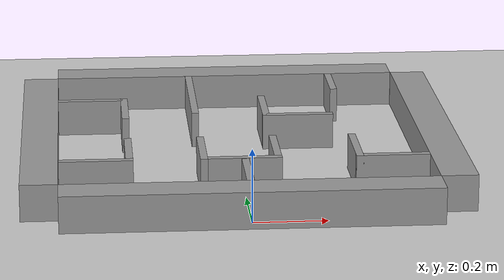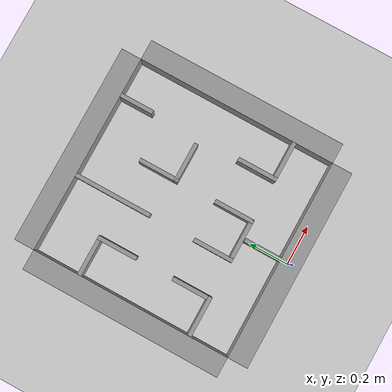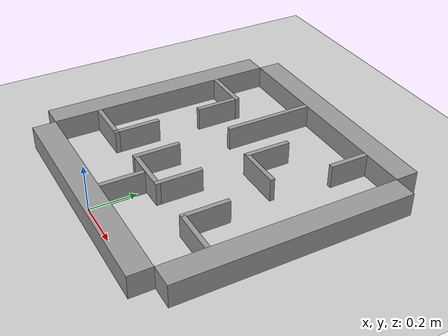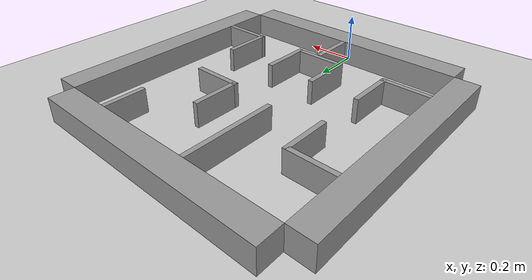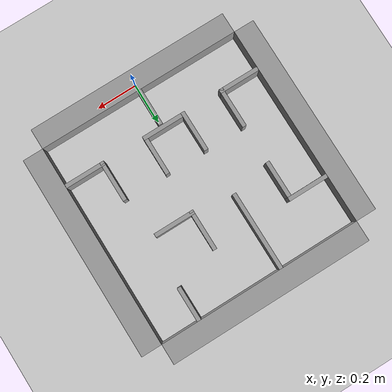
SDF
<sdf version="1.6">
 <world name="default">
  <physics type="ode">
   <ode><solver><type>quick</type><iters>50</iters><friction_model>cone_model</friction_model></solver></ode>
  </physics>
  <light name="sun" type="directional">
   <pose>0 0 10 0 -0 0</pose>
   <diffuse>0.8 0.8 0.8 1</diffuse>
   <specular>0.1 0.1 0.1 1</specular>
   <attenuation>
    <range>1000</range>
    <constant>0.9</constant>
    <linear>0.01</linear>
    <quadratic>0.001</quadratic>
   </attenuation>
   <direction>-0.5 0.5 -1</direction>
  </light>
  <model name="ground_plane">
   <static>1</static>
   <link name="link">
    <collision name="collision">
     <geometry><plane><normal>0 0 1</normal><size>100 100</size></plane></geometry>
     <surface><friction><ode><mu>100</mu><mu2>50</mu2></ode></friction></surface>
    </collision>
    <visual name="visual">
     <cast_shadows>0</cast_shadows>
     <geometry><plane><normal>0 0 1</normal><size>100 100</size></plane></geometry>
     <material>
      <script><uri>file://media/materials/scripts/gazebo.material</uri><name>Gazebo/Grey</name></script>
     </material>
    </visual>
   </link>
  </model>
  <gravity>0 0 -9.8</gravity>
  <magnetic_field>6e-06 2.3e-05 -4.2e-05</magnetic_field>
  <atmosphere type="adiabatic"/>
  <physics name="default_physics" default="0" type="ode">
   <max_step_size>0.001</max_step_size>
   <real_time_factor>1</real_time_factor>
   <real_time_update_rate>1000</real_time_update_rate>
  </physics>
  <scene><ambient>0.4 0.4 0.4 1</ambient><background>0.7 0.7 0.7 1</background><shadows>1</shadows></scene>
  <spherical_coordinates>
   <surface_model>EARTH_WGS84</surface_model>
   <latitude_deg>0</latitude_deg>
   <longitude_deg>0</longitude_deg>
   <elevation>0</elevation>
   <heading_deg>0</heading_deg>
  </spherical_coordinates>
  <model name="vector_world_2">
   <link name="link_0">
    <pose>0.014437 -0.508808 0 0 -0 0</pose>
    <inertial>
     <mass>1</mass>
     <inertia>
      <ixx>0.166667</ixx>
      <ixy>0</ixy>
      <ixz>0</ixz>
      <iyy>0.166667</iyy>
      <iyz>0</iyz>
      <izz>0.166667</izz>
     </inertia>
    </inertial>
    <visual name="visual">
     <geometry><box><size>1 0.1 0.1</size></box></geometry>
     <material>
      <lighting>1</lighting>
      <script><uri>file://media/materials/scripts/gazebo.material</uri><name>Gazebo/Grey</name></script>
      <ambient>0.3 0.3 0.3 1</ambient>
      <diffuse>0.7 0.7 0.7 1</diffuse>
      <specular>0.01 0.01 0.01 1</specular>
      <emissive>0 0 0 1</emissive>
      <shader type="vertex"><normal_map>__default__</normal_map></shader>
     </material>
    </visual>
    <collision name="collision">
     <geometry><box><size>1 0.1 0.1</size></box></geometry>
     <surface>
      <friction>
       <ode><mu>1</mu><mu2>1</mu2><fdir1>0 0 0</fdir1><slip1>0</slip1><slip2>0</slip2></ode>
       <torsional>
        <coefficient>1</coefficient>
        <patch_radius>0</patch_radius>
        <surface_radius>0</surface_radius>
        <use_patch_radius>1</use_patch_radius>
        <ode><slip>0</slip></ode>
       </torsional>
      </friction>
      <bounce><restitution_coefficient>0</restitution_coefficient><threshold>1e+06</threshold></bounce>
      <contact>
       <collide_without_contact>0</collide_without_contact>
       <collide_without_contact_bitmask>1</collide_without_contact_bitmask>
       <collide_bitmask>1</collide_bitmask>
       <ode>
        <soft_cfm>0</soft_cfm>
        <soft_erp>0.2</soft_erp>
        <kp>1e+13</kp>
        <kd>1</kd>
        <max_vel>0.01</max_vel>
        <min_depth>0</min_depth>
       </ode>
       <bullet>
        <split_impulse>1</split_impulse>
        <split_impulse_penetration_threshold>-0.01</split_impulse_penetration_threshold>
        <soft_cfm>0</soft_cfm>
        <soft_erp>0.2</soft_erp>
        <kp>1e+13</kp>
        <kd>1</kd>
       </bullet>
      </contact>
     </surface>
    </collision>
   </link>
   <link name="link_0_clone">
    <pose>0.564437 0.041192 0 0 -0 1.57</pose>
    <inertial>
     <mass>1</mass>
     <inertia>
      <ixx>0.166667</ixx>
      <ixy>0</ixy>
      <ixz>0</ixz>
      <iyy>0.166667</iyy>
      <iyz>0</iyz>
      <izz>0.166667</izz>
     </inertia>
    </inertial>
    <visual name="visual">
     <geometry><box><size>1 0.1 0.1</size></box></geometry>
     <material>
      <lighting>1</lighting>
      <script><uri>file://media/materials/scripts/gazebo.material</uri><name>Gazebo/Grey</name></script>
      <ambient>0.3 0.3 0.3 1</ambient>
      <diffuse>0.7 0.7 0.7 1</diffuse>
      <specular>0.01 0.01 0.01 1</specular>
      <emissive>0 0 0 1</emissive>
      <shader type="vertex"><normal_map>__default__</normal_map></shader>
     </material>
    </visual>
    <collision name="collision">
     <geometry><box><size>1 0.1 0.1</size></box></geometry>
     <surface>
      <friction>
       <ode><mu>1</mu><mu2>1</mu2><fdir1>0 0 0</fdir1><slip1>0</slip1><slip2>0</slip2></ode>
       <torsional>
        <coefficient>1</coefficient>
        <patch_radius>0</patch_radius>
        <surface_radius>0</surface_radius>
        <use_patch_radius>1</use_patch_radius>
        <ode><slip>0</slip></ode>
       </torsional>
      </friction>
      <bounce><restitution_coefficient>0</restitution_coefficient><threshold>1e+06</threshold></bounce>
      <contact>
       <collide_without_contact>0</collide_without_contact>
       <collide_without_contact_bitmask>1</collide_without_contact_bitmask>
       <collide_bitmask>1</collide_bitmask>
       <ode>
        <soft_cfm>0</soft_cfm>
        <soft_erp>0.2</soft_erp>
        <kp>1e+13</kp>
        <kd>1</kd>
        <max_vel>0.01</max_vel>
        <min_depth>0</min_depth>
       </ode>
       <bullet>
        <split_impulse>1</split_impulse>
        <split_impulse_penetration_threshold>-0.01</split_impulse_penetration_threshold>
        <soft_cfm>0</soft_cfm>
        <soft_erp>0.2</soft_erp>
        <kp>1e+13</kp>
        <kd>1</kd>
       </bullet>
      </contact>
     </surface>
    </collision>
   </link>
   <link name="link_0_clone_0">
    <pose>-0.535563 0.041192 0 0 -0 1.57</pose>
    <inertial>
     <mass>1</mass>
     <inertia>
      <ixx>0.166667</ixx>
      <ixy>0</ixy>
      <ixz>0</ixz>
      <iyy>0.166667</iyy>
      <iyz>0</iyz>
      <izz>0.166667</izz>
     </inertia>
    </inertial>
    <visual name="visual">
     <geometry><box><size>1 0.1 0.1</size></box></geometry>
     <material>
      <lighting>1</lighting>
      <script><uri>file://media/materials/scripts/gazebo.material</uri><name>Gazebo/Grey</name></script>
      <ambient>0.3 0.3 0.3 1</ambient>
      <diffuse>0.7 0.7 0.7 1</diffuse>
      <specular>0.01 0.01 0.01 1</specular>
      <emissive>0 0 0 1</emissive>
      <shader type="vertex"><normal_map>__default__</normal_map></shader>
     </material>
    </visual>
    <collision name="collision">
     <geometry><box><size>1 0.1 0.1</size></box></geometry>
     <surface>
      <friction>
       <ode><mu>1</mu><mu2>1</mu2><fdir1>0 0 0</fdir1><slip1>0</slip1><slip2>0</slip2></ode>
       <torsional>
        <coefficient>1</coefficient>
        <patch_radius>0</patch_radius>
        <surface_radius>0</surface_radius>
        <use_patch_radius>1</use_patch_radius>
        <ode><slip>0</slip></ode>
       </torsional>
      </friction>
      <bounce><restitution_coefficient>0</restitution_coefficient><threshold>1e+06</threshold></bounce>
      <contact>
       <collide_without_contact>0</collide_without_contact>
       <collide_without_contact_bitmask>1</collide_without_contact_bitmask>
       <collide_bitmask>1</collide_bitmask>
       <ode>
        <soft_cfm>0</soft_cfm>
        <soft_erp>0.2</soft_erp>
        <kp>1e+13</kp>
        <kd>1</kd>
        <max_vel>0.01</max_vel>
        <min_depth>0</min_depth>
       </ode>
       <bullet>
        <split_impulse>1</split_impulse>
        <split_impulse_penetration_threshold>-0.01</split_impulse_penetration_threshold>
        <soft_cfm>0</soft_cfm>
        <soft_erp>0.2</soft_erp>
        <kp>1e+13</kp>
        <kd>1</kd>
       </bullet>
      </contact>
     </surface>
    </collision>
   </link>
   <link name="link_0_clone_1">
    <pose>0.014437 0.591192 0 0 -0 0</pose>
    <inertial>
     <mass>1</mass>
     <inertia>
      <ixx>0.166667</ixx>
      <ixy>0</ixy>
      <ixz>0</ixz>
      <iyy>0.166667</iyy>
      <iyz>0</iyz>
      <izz>0.166667</izz>
     </inertia>
    </inertial>
    <visual name="visual">
     <geometry><box><size>1 0.1 0.1</size></box></geometry>
     <material>
      <lighting>1</lighting>
      <script><uri>file://media/materials/scripts/gazebo.material</uri><name>Gazebo/Grey</name></script>
      <ambient>0.3 0.3 0.3 1</ambient>
      <diffuse>0.7 0.7 0.7 1</diffuse>
      <specular>0.01 0.01 0.01 1</specular>
      <emissive>0 0 0 1</emissive>
      <shader type="vertex"><normal_map>__default__</normal_map></shader>
     </material>
    </visual>
    <collision name="collision">
     <geometry><box><size>1 0.1 0.1</size></box></geometry>
     <surface>
      <friction>
       <ode><mu>1</mu><mu2>1</mu2><fdir1>0 0 0</fdir1><slip1>0</slip1><slip2>0</slip2></ode>
       <torsional>
        <coefficient>1</coefficient>
        <patch_radius>0</patch_radius>
        <surface_radius>0</surface_radius>
        <use_patch_radius>1</use_patch_radius>
        <ode><slip>0</slip></ode>
       </torsional>
      </friction>
      <bounce><restitution_coefficient>0</restitution_coefficient><threshold>1e+06</threshold></bounce>
      <contact>
       <collide_without_contact>0</collide_without_contact>
       <collide_without_contact_bitmask>1</collide_without_contact_bitmask>
       <collide_bitmask>1</collide_bitmask>
       <ode>
        <soft_cfm>0</soft_cfm>
        <soft_erp>0.2</soft_erp>
        <kp>1e+13</kp>
        <kd>1</kd>
        <max_vel>0.01</max_vel>
        <min_depth>0</min_depth>
       </ode>
       <bullet>
        <split_impulse>1</split_impulse>
        <split_impulse_penetration_threshold>-0.01</split_impulse_penetration_threshold>
        <soft_cfm>0</soft_cfm>
        <soft_erp>0.2</soft_erp>
        <kp>1e+13</kp>
        <kd>1</kd>
       </bullet>
      </contact>
     </surface>
    </collision>
   </link>
   <link name="link_1">
    <pose>-0.385165 -0.261869 0 0 -0 0</pose>
    <inertial>
     <mass>1</mass>
     <inertia>
      <ixx>0.166667</ixx>
      <ixy>0</ixy>
      <ixz>0</ixz>
      <iyy>0.166667</iyy>
      <iyz>0</iyz>
      <izz>0.166667</izz>
     </inertia>
    </inertial>
    <visual name="visual">
     <geometry><box><size>0.2 0.02 0.1</size></box></geometry>
     <material>
      <lighting>1</lighting>
      <script><uri>file://media/materials/scripts/gazebo.material</uri><name>Gazebo/Grey</name></script>
      <ambient>0.3 0.3 0.3 1</ambient>
      <diffuse>0.7 0.7 0.7 1</diffuse>
      <specular>0.01 0.01 0.01 1</specular>
      <emissive>0 0 0 1</emissive>
      <shader type="vertex"><normal_map>__default__</normal_map></shader>
     </material>
    </visual>
    <collision name="collision">
     <geometry><box><size>0.2 0.02 0.1</size></box></geometry>
     <surface>
      <friction>
       <ode><mu>1</mu><mu2>1</mu2><fdir1>0 0 0</fdir1><slip1>0</slip1><slip2>0</slip2></ode>
       <torsional>
        <coefficient>1</coefficient>
        <patch_radius>0</patch_radius>
        <surface_radius>0</surface_radius>
        <use_patch_radius>1</use_patch_radius>
        <ode><slip>0</slip></ode>
       </torsional>
      </friction>
      <bounce><restitution_coefficient>0</restitution_coefficient><threshold>1e+06</threshold></bounce>
      <contact>
       <collide_without_contact>0</collide_without_contact>
       <collide_without_contact_bitmask>1</collide_without_contact_bitmask>
       <collide_bitmask>1</collide_bitmask>
       <ode>
        <soft_cfm>0</soft_cfm>
        <soft_erp>0.2</soft_erp>
        <kp>1e+13</kp>
        <kd>1</kd>
        <max_vel>0.01</max_vel>
        <min_depth>0</min_depth>
       </ode>
       <bullet>
        <split_impulse>1</split_impulse>
        <split_impulse_penetration_threshold>-0.01</split_impulse_penetration_threshold>
        <soft_cfm>0</soft_cfm>
        <soft_erp>0.2</soft_erp>
        <kp>1e+13</kp>
        <kd>1</kd>
       </bullet>
      </contact>
     </surface>
    </collision>
   </link>
   <link name="link_1_clone">
    <pose>0.014437 -0.261869 0 0 -0 0</pose>
    <inertial>
     <mass>1</mass>
     <inertia>
      <ixx>0.166667</ixx>
      <ixy>0</ixy>
      <ixz>0</ixz>
      <iyy>0.166667</iyy>
      <iyz>0</iyz>
      <izz>0.166667</izz>
     </inertia>
    </inertial>
    <visual name="visual">
     <geometry><box><size>0.2 0.02 0.1</size></box></geometry>
     <material>
      <lighting>1</lighting>
      <script><uri>file://media/materials/scripts/gazebo.material</uri><name>Gazebo/Grey</name></script>
      <ambient>0.3 0.3 0.3 1</ambient>
      <diffuse>0.7 0.7 0.7 1</diffuse>
      <specular>0.01 0.01 0.01 1</specular>
      <emissive>0 0 0 1</emissive>
      <shader type="vertex"><normal_map>__default__</normal_map></shader>
     </material>
    </visual>
    <collision name="collision">
     <geometry><box><size>0.2 0.02 0.1</size></box></geometry>
     <surface>
      <friction>
       <ode><mu>1</mu><mu2>1</mu2><fdir1>0 0 0</fdir1><slip1>0</slip1><slip2>0</slip2></ode>
       <torsional>
        <coefficient>1</coefficient>
        <patch_radius>0</patch_radius>
        <surface_radius>0</surface_radius>
        <use_patch_radius>1</use_patch_radius>
        <ode><slip>0</slip></ode>
       </torsional>
      </friction>
      <bounce><restitution_coefficient>0</restitution_coefficient><threshold>1e+06</threshold></bounce>
      <contact>
       <collide_without_contact>0</collide_without_contact>
       <collide_without_contact_bitmask>1</collide_without_contact_bitmask>
       <collide_bitmask>1</collide_bitmask>
       <ode>
        <soft_cfm>0</soft_cfm>
        <soft_erp>0.2</soft_erp>
        <kp>1e+13</kp>
        <kd>1</kd>
        <max_vel>0.01</max_vel>
        <min_depth>0</min_depth>
       </ode>
       <bullet>
        <split_impulse>1</split_impulse>
        <split_impulse_penetration_threshold>-0.01</split_impulse_penetration_threshold>
        <soft_cfm>0</soft_cfm>
        <soft_erp>0.2</soft_erp>
        <kp>1e+13</kp>
        <kd>1</kd>
       </bullet>
      </contact>
     </surface>
    </collision>
   </link>
   <link name="link_1_clone_0">
    <pose>-0.385055 0.304998 0 0 -0 0</pose>
    <inertial>
     <mass>1</mass>
     <inertia>
      <ixx>0.166667</ixx>
      <ixy>0</ixy>
      <ixz>0</ixz>
      <iyy>0.166667</iyy>
      <iyz>0</iyz>
      <izz>0.166667</izz>
     </inertia>
    </inertial>
    <visual name="visual">
     <geometry><box><size>0.2 0.02 0.1</size></box></geometry>
     <material>
      <lighting>1</lighting>
      <script><uri>file://media/materials/scripts/gazebo.material</uri><name>Gazebo/Grey</name></script>
      <ambient>0.3 0.3 0.3 1</ambient>
      <diffuse>0.7 0.7 0.7 1</diffuse>
      <specular>0.01 0.01 0.01 1</specular>
      <emissive>0 0 0 1</emissive>
      <shader type="vertex"><normal_map>__default__</normal_map></shader>
     </material>
    </visual>
    <collision name="collision">
     <geometry><box><size>0.2 0.02 0.1</size></box></geometry>
     <surface>
      <friction>
       <ode><mu>1</mu><mu2>1</mu2><fdir1>0 0 0</fdir1><slip1>0</slip1><slip2>0</slip2></ode>
       <torsional>
        <coefficient>1</coefficient>
        <patch_radius>0</patch_radius>
        <surface_radius>0</surface_radius>
        <use_patch_radius>1</use_patch_radius>
        <ode><slip>0</slip></ode>
       </torsional>
      </friction>
      <bounce><restitution_coefficient>0</restitution_coefficient><threshold>1e+06</threshold></bounce>
      <contact>
       <collide_without_contact>0</collide_without_contact>
       <collide_without_contact_bitmask>1</collide_without_contact_bitmask>
       <collide_bitmask>1</collide_bitmask>
       <ode>
        <soft_cfm>0</soft_cfm>
        <soft_erp>0.2</soft_erp>
        <kp>1e+13</kp>
        <kd>1</kd>
        <max_vel>0.01</max_vel>
        <min_depth>0</min_depth>
       </ode>
       <bullet>
        <split_impulse>1</split_impulse>
        <split_impulse_penetration_threshold>-0.01</split_impulse_penetration_threshold>
        <soft_cfm>0</soft_cfm>
        <soft_erp>0.2</soft_erp>
        <kp>1e+13</kp>
        <kd>1</kd>
       </bullet>
      </contact>
     </surface>
    </collision>
   </link>
   <link name="link_1_clone_1">
    <pose>0.194277 0.129438 0 0 -0 0</pose>
    <inertial>
     <mass>1</mass>
     <inertia>
      <ixx>0.166667</ixx>
      <ixy>0</ixy>
      <ixz>0</ixz>
      <iyy>0.166667</iyy>
      <iyz>0</iyz>
      <izz>0.166667</izz>
     </inertia>
    </inertial>
    <visual name="visual">
     <geometry><box><size>0.2 0.02 0.1</size></box></geometry>
     <material>
      <lighting>1</lighting>
      <script><uri>file://media/materials/scripts/gazebo.material</uri><name>Gazebo/Grey</name></script>
      <ambient>0.3 0.3 0.3 1</ambient>
      <diffuse>0.7 0.7 0.7 1</diffuse>
      <specular>0.01 0.01 0.01 1</specular>
      <emissive>0 0 0 1</emissive>
      <shader type="vertex"><normal_map>__default__</normal_map></shader>
     </material>
    </visual>
    <collision name="collision">
     <geometry><box><size>0.2 0.02 0.1</size></box></geometry>
     <surface>
      <friction>
       <ode><mu>1</mu><mu2>1</mu2><fdir1>0 0 0</fdir1><slip1>0</slip1><slip2>0</slip2></ode>
       <torsional>
        <coefficient>1</coefficient>
        <patch_radius>0</patch_radius>
        <surface_radius>0</surface_radius>
        <use_patch_radius>1</use_patch_radius>
        <ode><slip>0</slip></ode>
       </torsional>
      </friction>
      <bounce><restitution_coefficient>0</restitution_coefficient><threshold>1e+06</threshold></bounce>
      <contact>
       <collide_without_contact>0</collide_without_contact>
       <collide_without_contact_bitmask>1</collide_without_contact_bitmask>
       <collide_bitmask>1</collide_bitmask>
       <ode>
        <soft_cfm>0</soft_cfm>
        <soft_erp>0.2</soft_erp>
        <kp>1e+13</kp>
        <kd>1</kd>
        <max_vel>0.01</max_vel>
        <min_depth>0</min_depth>
       </ode>
       <bullet>
        <split_impulse>1</split_impulse>
        <split_impulse_penetration_threshold>-0.01</split_impulse_penetration_threshold>
        <soft_cfm>0</soft_cfm>
        <soft_erp>0.2</soft_erp>
        <kp>1e+13</kp>
        <kd>1</kd>
       </bullet>
      </contact>
     </surface>
    </collision>
   </link>
   <link name="link_1_clone_clone">
    <pose>0.414039 -0.261869 0 0 -0 0</pose>
    <inertial>
     <mass>1</mass>
     <inertia>
      <ixx>0.166667</ixx>
      <ixy>0</ixy>
      <ixz>0</ixz>
      <iyy>0.166667</iyy>
      <iyz>0</iyz>
      <izz>0.166667</izz>
     </inertia>
    </inertial>
    <visual name="visual">
     <geometry><box><size>0.2 0.02 0.1</size></box></geometry>
     <material>
      <lighting>1</lighting>
      <script><uri>file://media/materials/scripts/gazebo.material</uri><name>Gazebo/Grey</name></script>
      <ambient>0.3 0.3 0.3 1</ambient>
      <diffuse>0.7 0.7 0.7 1</diffuse>
      <specular>0.01 0.01 0.01 1</specular>
      <emissive>0 0 0 1</emissive>
      <shader type="vertex"><normal_map>__default__</normal_map></shader>
     </material>
    </visual>
    <collision name="collision">
     <geometry><box><size>0.2 0.02 0.1</size></box></geometry>
     <surface>
      <friction>
       <ode><mu>1</mu><mu2>1</mu2><fdir1>0 0 0</fdir1><slip1>0</slip1><slip2>0</slip2></ode>
       <torsional>
        <coefficient>1</coefficient>
        <patch_radius>0</patch_radius>
        <surface_radius>0</surface_radius>
        <use_patch_radius>1</use_patch_radius>
        <ode><slip>0</slip></ode>
       </torsional>
      </friction>
      <bounce><restitution_coefficient>0</restitution_coefficient><threshold>1e+06</threshold></bounce>
      <contact>
       <collide_without_contact>0</collide_without_contact>
       <collide_without_contact_bitmask>1</collide_without_contact_bitmask>
       <collide_bitmask>1</collide_bitmask>
       <ode>
        <soft_cfm>0</soft_cfm>
        <soft_erp>0.2</soft_erp>
        <kp>1e+13</kp>
        <kd>1</kd>
        <max_vel>0.01</max_vel>
        <min_depth>0</min_depth>
       </ode>
       <bullet>
        <split_impulse>1</split_impulse>
        <split_impulse_penetration_threshold>-0.01</split_impulse_penetration_threshold>
        <soft_cfm>0</soft_cfm>
        <soft_erp>0.2</soft_erp>
        <kp>1e+13</kp>
        <kd>1</kd>
       </bullet>
      </contact>
     </surface>
    </collision>
   </link>
   <link name="link_1_clone_clone_0">
    <pose>-0.095643 -0.171861 0 0 -0 1.57</pose>
    <inertial>
     <mass>1</mass>
     <inertia>
      <ixx>0.166667</ixx>
      <ixy>0</ixy>
      <ixz>0</ixz>
      <iyy>0.166667</iyy>
      <iyz>0</iyz>
      <izz>0.166667</izz>
     </inertia>
    </inertial>
    <visual name="visual">
     <geometry><box><size>0.2 0.02 0.1</size></box></geometry>
     <material>
      <lighting>1</lighting>
      <script><uri>file://media/materials/scripts/gazebo.material</uri><name>Gazebo/Grey</name></script>
      <ambient>0.3 0.3 0.3 1</ambient>
      <diffuse>0.7 0.7 0.7 1</diffuse>
      <specular>0.01 0.01 0.01 1</specular>
      <emissive>0 0 0 1</emissive>
      <shader type="vertex"><normal_map>__default__</normal_map></shader>
     </material>
    </visual>
    <collision name="collision">
     <geometry><box><size>0.2 0.02 0.1</size></box></geometry>
     <surface>
      <friction>
       <ode><mu>1</mu><mu2>1</mu2><fdir1>0 0 0</fdir1><slip1>0</slip1><slip2>0</slip2></ode>
       <torsional>
        <coefficient>1</coefficient>
        <patch_radius>0</patch_radius>
        <surface_radius>0</surface_radius>
        <use_patch_radius>1</use_patch_radius>
        <ode><slip>0</slip></ode>
       </torsional>
      </friction>
      <bounce><restitution_coefficient>0</restitution_coefficient><threshold>1e+06</threshold></bounce>
      <contact>
       <collide_without_contact>0</collide_without_contact>
       <collide_without_contact_bitmask>1</collide_without_contact_bitmask>
       <collide_bitmask>1</collide_bitmask>
       <ode>
        <soft_cfm>0</soft_cfm>
        <soft_erp>0.2</soft_erp>
        <kp>1e+13</kp>
        <kd>1</kd>
        <max_vel>0.01</max_vel>
        <min_depth>0</min_depth>
       </ode>
       <bullet>
        <split_impulse>1</split_impulse>
        <split_impulse_penetration_threshold>-0.01</split_impulse_penetration_threshold>
        <soft_cfm>0</soft_cfm>
        <soft_erp>0.2</soft_erp>
        <kp>1e+13</kp>
        <kd>1</kd>
       </bullet>
      </contact>
     </surface>
    </collision>
   </link>
   <link name="link_1_clone_clone_0_clone">
    <pose>-0.295245 -0.171861 0 0 -0 1.57</pose>
    <inertial>
     <mass>1</mass>
     <inertia>
      <ixx>0.166667</ixx>
      <ixy>0</ixy>
      <ixz>0</ixz>
      <iyy>0.166667</iyy>
      <iyz>0</iyz>
      <izz>0.166667</izz>
     </inertia>
    </inertial>
    <visual name="visual">
     <geometry><box><size>0.2 0.02 0.1</size></box></geometry>
     <material>
      <lighting>1</lighting>
      <script><uri>file://media/materials/scripts/gazebo.material</uri><name>Gazebo/Grey</name></script>
      <ambient>0.3 0.3 0.3 1</ambient>
      <diffuse>0.7 0.7 0.7 1</diffuse>
      <specular>0.01 0.01 0.01 1</specular>
      <emissive>0 0 0 1</emissive>
      <shader type="vertex"><normal_map>__default__</normal_map></shader>
     </material>
    </visual>
    <collision name="collision">
     <geometry><box><size>0.2 0.02 0.1</size></box></geometry>
     <surface>
      <friction>
       <ode><mu>1</mu><mu2>1</mu2><fdir1>0 0 0</fdir1><slip1>0</slip1><slip2>0</slip2></ode>
       <torsional>
        <coefficient>1</coefficient>
        <patch_radius>0</patch_radius>
        <surface_radius>0</surface_radius>
        <use_patch_radius>1</use_patch_radius>
        <ode><slip>0</slip></ode>
       </torsional>
      </friction>
      <bounce><restitution_coefficient>0</restitution_coefficient><threshold>1e+06</threshold></bounce>
      <contact>
       <collide_without_contact>0</collide_without_contact>
       <collide_without_contact_bitmask>1</collide_without_contact_bitmask>
       <collide_bitmask>1</collide_bitmask>
       <ode>
        <soft_cfm>0</soft_cfm>
        <soft_erp>0.2</soft_erp>
        <kp>1e+13</kp>
        <kd>1</kd>
        <max_vel>0.01</max_vel>
        <min_depth>0</min_depth>
       </ode>
       <bullet>
        <split_impulse>1</split_impulse>
        <split_impulse_penetration_threshold>-0.01</split_impulse_penetration_threshold>
        <soft_cfm>0</soft_cfm>
        <soft_erp>0.2</soft_erp>
        <kp>1e+13</kp>
        <kd>1</kd>
       </bullet>
      </contact>
     </surface>
    </collision>
   </link>
   <link name="link_1_clone_clone_0_clone_0">
    <pose>0.104357 -0.171861 0 0 -0 1.57</pose>
    <inertial>
     <mass>1</mass>
     <inertia>
      <ixx>0.166667</ixx>
      <ixy>0</ixy>
      <ixz>0</ixz>
      <iyy>0.166667</iyy>
      <iyz>0</iyz>
      <izz>0.166667</izz>
     </inertia>
    </inertial>
    <visual name="visual">
     <geometry><box><size>0.2 0.02 0.1</size></box></geometry>
     <material>
      <lighting>1</lighting>
      <script><uri>file://media/materials/scripts/gazebo.material</uri><name>Gazebo/Grey</name></script>
      <ambient>0.3 0.3 0.3 1</ambient>
      <diffuse>0.7 0.7 0.7 1</diffuse>
      <specular>0.01 0.01 0.01 1</specular>
      <emissive>0 0 0 1</emissive>
      <shader type="vertex"><normal_map>__default__</normal_map></shader>
     </material>
    </visual>
    <collision name="collision">
     <geometry><box><size>0.2 0.02 0.1</size></box></geometry>
     <surface>
      <friction>
       <ode><mu>1</mu><mu2>1</mu2><fdir1>0 0 0</fdir1><slip1>0</slip1><slip2>0</slip2></ode>
       <torsional>
        <coefficient>1</coefficient>
        <patch_radius>0</patch_radius>
        <surface_radius>0</surface_radius>
        <use_patch_radius>1</use_patch_radius>
        <ode><slip>0</slip></ode>
       </torsional>
      </friction>
      <bounce><restitution_coefficient>0</restitution_coefficient><threshold>1e+06</threshold></bounce>
      <contact>
       <collide_without_contact>0</collide_without_contact>
       <collide_without_contact_bitmask>1</collide_without_contact_bitmask>
       <collide_bitmask>1</collide_bitmask>
       <ode>
        <soft_cfm>0</soft_cfm>
        <soft_erp>0.2</soft_erp>
        <kp>1e+13</kp>
        <kd>1</kd>
        <max_vel>0.01</max_vel>
        <min_depth>0</min_depth>
       </ode>
       <bullet>
        <split_impulse>1</split_impulse>
        <split_impulse_penetration_threshold>-0.01</split_impulse_penetration_threshold>
        <soft_cfm>0</soft_cfm>
        <soft_erp>0.2</soft_erp>
        <kp>1e+13</kp>
        <kd>1</kd>
       </bullet>
      </contact>
     </surface>
    </collision>
   </link>
   <link name="link_1_clone_clone_0_clone_1">
    <pose>0.324118 -0.171861 0 0 -0 1.57</pose>
    <inertial>
     <mass>1</mass>
     <inertia>
      <ixx>0.166667</ixx>
      <ixy>0</ixy>
      <ixz>0</ixz>
      <iyy>0.166667</iyy>
      <iyz>0</iyz>
      <izz>0.166667</izz>
     </inertia>
    </inertial>
    <visual name="visual">
     <geometry><box><size>0.2 0.02 0.1</size></box></geometry>
     <material>
      <lighting>1</lighting>
      <script><uri>file://media/materials/scripts/gazebo.material</uri><name>Gazebo/Grey</name></script>
      <ambient>0.3 0.3 0.3 1</ambient>
      <diffuse>0.7 0.7 0.7 1</diffuse>
      <specular>0.01 0.01 0.01 1</specular>
      <emissive>0 0 0 1</emissive>
      <shader type="vertex"><normal_map>__default__</normal_map></shader>
     </material>
    </visual>
    <collision name="collision">
     <geometry><box><size>0.2 0.02 0.1</size></box></geometry>
     <surface>
      <friction>
       <ode><mu>1</mu><mu2>1</mu2><fdir1>0 0 0</fdir1><slip1>0</slip1><slip2>0</slip2></ode>
       <torsional>
        <coefficient>1</coefficient>
        <patch_radius>0</patch_radius>
        <surface_radius>0</surface_radius>
        <use_patch_radius>1</use_patch_radius>
        <ode><slip>0</slip></ode>
       </torsional>
      </friction>
      <bounce><restitution_coefficient>0</restitution_coefficient><threshold>1e+06</threshold></bounce>
      <contact>
       <collide_without_contact>0</collide_without_contact>
       <collide_without_contact_bitmask>1</collide_without_contact_bitmask>
       <collide_bitmask>1</collide_bitmask>
       <ode>
        <soft_cfm>0</soft_cfm>
        <soft_erp>0.2</soft_erp>
        <kp>1e+13</kp>
        <kd>1</kd>
        <max_vel>0.01</max_vel>
        <min_depth>0</min_depth>
       </ode>
       <bullet>
        <split_impulse>1</split_impulse>
        <split_impulse_penetration_threshold>-0.01</split_impulse_penetration_threshold>
        <soft_cfm>0</soft_cfm>
        <soft_erp>0.2</soft_erp>
        <kp>1e+13</kp>
        <kd>1</kd>
       </bullet>
      </contact>
     </surface>
    </collision>
   </link>
   <link name="link_1_clone_clone_0_clone_1_clone">
    <pose>0.324118 0.457475 0 0 -0 1.57</pose>
    <inertial>
     <mass>0.837086</mass>
     <inertia>
      <ixx>0.139515</ixx>
      <ixy>0</ixy>
      <ixz>0</ixz>
      <iyy>0.118637</iyy>
      <iyz>0</iyz>
      <izz>0.118637</izz>
     </inertia>
    </inertial>
    <visual name="visual">
     <geometry><box><size>0.167418 0.02 0.1</size></box></geometry>
     <material>
      <lighting>1</lighting>
      <script><uri>file://media/materials/scripts/gazebo.material</uri><name>Gazebo/Grey</name></script>
      <ambient>0.3 0.3 0.3 1</ambient>
      <diffuse>0.7 0.7 0.7 1</diffuse>
      <specular>0.01 0.01 0.01 1</specular>
      <emissive>0 0 0 1</emissive>
      <shader type="vertex"><normal_map>__default__</normal_map></shader>
     </material>
    </visual>
    <collision name="collision">
     <geometry><box><size>0.167418 0.02 0.1</size></box></geometry>
     <surface>
      <friction>
       <ode><mu>1</mu><mu2>1</mu2><fdir1>0 0 0</fdir1><slip1>0</slip1><slip2>0</slip2></ode>
       <torsional>
        <coefficient>1</coefficient>
        <patch_radius>0</patch_radius>
        <surface_radius>0</surface_radius>
        <use_patch_radius>1</use_patch_radius>
        <ode><slip>0</slip></ode>
       </torsional>
      </friction>
      <bounce><restitution_coefficient>0</restitution_coefficient><threshold>1e+06</threshold></bounce>
      <contact>
       <collide_without_contact>0</collide_without_contact>
       <collide_without_contact_bitmask>1</collide_without_contact_bitmask>
       <collide_bitmask>1</collide_bitmask>
       <ode>
        <soft_cfm>0</soft_cfm>
        <soft_erp>0.2</soft_erp>
        <kp>1e+13</kp>
        <kd>1</kd>
        <max_vel>0.01</max_vel>
        <min_depth>0</min_depth>
       </ode>
       <bullet>
        <split_impulse>1</split_impulse>
        <split_impulse_penetration_threshold>-0.01</split_impulse_penetration_threshold>
        <soft_cfm>0</soft_cfm>
        <soft_erp>0.2</soft_erp>
        <kp>1e+13</kp>
        <kd>1</kd>
       </bullet>
      </contact>
     </surface>
    </collision>
   </link>
   <link name="link_1_clone_clone_0_clone_2">
    <pose>-0.295135 0.21499 0 0 -0 1.57</pose>
    <inertial>
     <mass>1</mass>
     <inertia>
      <ixx>0.166667</ixx>
      <ixy>0</ixy>
      <ixz>0</ixz>
      <iyy>0.166667</iyy>
      <iyz>0</iyz>
      <izz>0.166667</izz>
     </inertia>
    </inertial>
    <visual name="visual">
     <geometry><box><size>0.2 0.02 0.1</size></box></geometry>
     <material>
      <lighting>1</lighting>
      <script><uri>file://media/materials/scripts/gazebo.material</uri><name>Gazebo/Grey</name></script>
      <ambient>0.3 0.3 0.3 1</ambient>
      <diffuse>0.7 0.7 0.7 1</diffuse>
      <specular>0.01 0.01 0.01 1</specular>
      <emissive>0 0 0 1</emissive>
      <shader type="vertex"><normal_map>__default__</normal_map></shader>
     </material>
    </visual>
    <collision name="collision">
     <geometry><box><size>0.2 0.02 0.1</size></box></geometry>
     <surface>
      <friction>
       <ode><mu>1</mu><mu2>1</mu2><fdir1>0 0 0</fdir1><slip1>0</slip1><slip2>0</slip2></ode>
       <torsional>
        <coefficient>1</coefficient>
        <patch_radius>0</patch_radius>
        <surface_radius>0</surface_radius>
        <use_patch_radius>1</use_patch_radius>
        <ode><slip>0</slip></ode>
       </torsional>
      </friction>
      <bounce><restitution_coefficient>0</restitution_coefficient><threshold>1e+06</threshold></bounce>
      <contact>
       <collide_without_contact>0</collide_without_contact>
       <collide_without_contact_bitmask>1</collide_without_contact_bitmask>
       <collide_bitmask>1</collide_bitmask>
       <ode>
        <soft_cfm>0</soft_cfm>
        <soft_erp>0.2</soft_erp>
        <kp>1e+13</kp>
        <kd>1</kd>
        <max_vel>0.01</max_vel>
        <min_depth>0</min_depth>
       </ode>
       <bullet>
        <split_impulse>1</split_impulse>
        <split_impulse_penetration_threshold>-0.01</split_impulse_penetration_threshold>
        <soft_cfm>0</soft_cfm>
        <soft_erp>0.2</soft_erp>
        <kp>1e+13</kp>
        <kd>1</kd>
       </bullet>
      </contact>
     </surface>
    </collision>
   </link>
   <link name="link_1_clone_clone_0_clone_2_clone">
    <pose>-0.095643 0.348643 0 0 -0 1.57</pose>
    <inertial>
     <mass>1.92541</mass>
     <inertia>
      <ixx>0.320902</ixx>
      <ixy>0</ixy>
      <ixz>0</ixz>
      <iyy>0.755276</iyy>
      <iyz>0</iyz>
      <izz>0.755276</izz>
     </inertia>
    </inertial>
    <visual name="visual">
     <geometry><box><size>0.385082 0.02 0.1</size></box></geometry>
     <material>
      <lighting>1</lighting>
      <script><uri>file://media/materials/scripts/gazebo.material</uri><name>Gazebo/Grey</name></script>
      <ambient>0.3 0.3 0.3 1</ambient>
      <diffuse>0.7 0.7 0.7 1</diffuse>
      <specular>0.01 0.01 0.01 1</specular>
      <emissive>0 0 0 1</emissive>
      <shader type="vertex"><normal_map>__default__</normal_map></shader>
     </material>
    </visual>
    <collision name="collision">
     <geometry><box><size>0.385082 0.02 0.1</size></box></geometry>
     <surface>
      <friction>
       <ode><mu>1</mu><mu2>1</mu2><fdir1>0 0 0</fdir1><slip1>0</slip1><slip2>0</slip2></ode>
       <torsional>
        <coefficient>1</coefficient>
        <patch_radius>0</patch_radius>
        <surface_radius>0</surface_radius>
        <use_patch_radius>1</use_patch_radius>
        <ode><slip>0</slip></ode>
       </torsional>
      </friction>
      <bounce><restitution_coefficient>0</restitution_coefficient><threshold>1e+06</threshold></bounce>
      <contact>
       <collide_without_contact>0</collide_without_contact>
       <collide_without_contact_bitmask>1</collide_without_contact_bitmask>
       <collide_bitmask>1</collide_bitmask>
       <ode>
        <soft_cfm>0</soft_cfm>
        <soft_erp>0.2</soft_erp>
        <kp>1e+13</kp>
        <kd>1</kd>
        <max_vel>0.01</max_vel>
        <min_depth>0</min_depth>
       </ode>
       <bullet>
        <split_impulse>1</split_impulse>
        <split_impulse_penetration_threshold>-0.01</split_impulse_penetration_threshold>
        <soft_cfm>0</soft_cfm>
        <soft_erp>0.2</soft_erp>
        <kp>1e+13</kp>
        <kd>1</kd>
       </bullet>
      </contact>
     </surface>
    </collision>
   </link>
   <link name="link_1_clone_clone_0_clone_2_clone_0">
    <pose>0.104357 0.219446 0 0 -0 1.57</pose>
    <inertial>
     <mass>1</mass>
     <inertia>
      <ixx>0.166667</ixx>
      <ixy>0</ixy>
      <ixz>0</ixz>
      <iyy>0.166667</iyy>
      <iyz>0</iyz>
      <izz>0.166667</izz>
     </inertia>
    </inertial>
    <visual name="visual">
     <geometry><box><size>0.2 0.02 0.1</size></box></geometry>
     <material>
      <lighting>1</lighting>
      <script><uri>file://media/materials/scripts/gazebo.material</uri><name>Gazebo/Grey</name></script>
      <ambient>0.3 0.3 0.3 1</ambient>
      <diffuse>0.7 0.7 0.7 1</diffuse>
      <specular>0.01 0.01 0.01 1</specular>
      <emissive>0 0 0 1</emissive>
      <shader type="vertex"><normal_map>__default__</normal_map></shader>
     </material>
    </visual>
    <collision name="collision">
     <geometry><box><size>0.2 0.02 0.1</size></box></geometry>
     <surface>
      <friction>
       <ode><mu>1</mu><mu2>1</mu2><fdir1>0 0 0</fdir1><slip1>0</slip1><slip2>0</slip2></ode>
       <torsional>
        <coefficient>1</coefficient>
        <patch_radius>0</patch_radius>
        <surface_radius>0</surface_radius>
        <use_patch_radius>1</use_patch_radius>
        <ode><slip>0</slip></ode>
       </torsional>
      </friction>
      <bounce><restitution_coefficient>0</restitution_coefficient><threshold>1e+06</threshold></bounce>
      <contact>
       <collide_without_contact>0</collide_without_contact>
       <collide_without_contact_bitmask>1</collide_without_contact_bitmask>
       <collide_bitmask>1</collide_bitmask>
       <ode>
        <soft_cfm>0</soft_cfm>
        <soft_erp>0.2</soft_erp>
        <kp>1e+13</kp>
        <kd>1</kd>
        <max_vel>0.01</max_vel>
        <min_depth>0</min_depth>
       </ode>
       <bullet>
        <split_impulse>1</split_impulse>
        <split_impulse_penetration_threshold>-0.01</split_impulse_penetration_threshold>
        <soft_cfm>0</soft_cfm>
        <soft_erp>0.2</soft_erp>
        <kp>1e+13</kp>
        <kd>1</kd>
       </bullet>
      </contact>
     </surface>
    </collision>
   </link>
   <link name="link_1_clone_clone_0_clone_2_clone_1">
    <pose>0.014437 -0.36671 0 0 -0 1.57</pose>
    <inertial>
     <mass>0.920904</mass>
     <inertia>
      <ixx>0.153484</ixx>
      <ixy>0</ixy>
      <ixz>0</ixz>
      <iyy>0.141824</iyy>
      <iyz>0</iyz>
      <izz>0.141824</izz>
     </inertia>
    </inertial>
    <visual name="visual">
     <geometry><box><size>0.184181 0.02 0.1</size></box></geometry>
     <material>
      <lighting>1</lighting>
      <script><uri>file://media/materials/scripts/gazebo.material</uri><name>Gazebo/Grey</name></script>
      <ambient>0.3 0.3 0.3 1</ambient>
      <diffuse>0.7 0.7 0.7 1</diffuse>
      <specular>0.01 0.01 0.01 1</specular>
      <emissive>0 0 0 1</emissive>
      <shader type="vertex"><normal_map>__default__</normal_map></shader>
     </material>
    </visual>
    <collision name="collision">
     <geometry><box><size>0.184181 0.02 0.1</size></box></geometry>
     <surface>
      <friction>
       <ode><mu>1</mu><mu2>1</mu2><fdir1>0 0 0</fdir1><slip1>0</slip1><slip2>0</slip2></ode>
       <torsional>
        <coefficient>1</coefficient>
        <patch_radius>0</patch_radius>
        <surface_radius>0</surface_radius>
        <use_patch_radius>1</use_patch_radius>
        <ode><slip>0</slip></ode>
       </torsional>
      </friction>
      <bounce><restitution_coefficient>0</restitution_coefficient><threshold>1e+06</threshold></bounce>
      <contact>
       <collide_without_contact>0</collide_without_contact>
       <collide_without_contact_bitmask>1</collide_without_contact_bitmask>
       <collide_bitmask>1</collide_bitmask>
       <ode>
        <soft_cfm>0</soft_cfm>
        <soft_erp>0.2</soft_erp>
        <kp>1e+13</kp>
        <kd>1</kd>
        <max_vel>0.01</max_vel>
        <min_depth>0</min_depth>
       </ode>
       <bullet>
        <split_impulse>1</split_impulse>
        <split_impulse_penetration_threshold>-0.01</split_impulse_penetration_threshold>
        <soft_cfm>0</soft_cfm>
        <soft_erp>0.2</soft_erp>
        <kp>1e+13</kp>
        <kd>1</kd>
       </bullet>
      </contact>
     </surface>
    </collision>
   </link>
   <static>0</static>
   <pose>-0.014437 0.508808 0.05 0 -0 0</pose>
  </model>
 </world>
</sdf>
